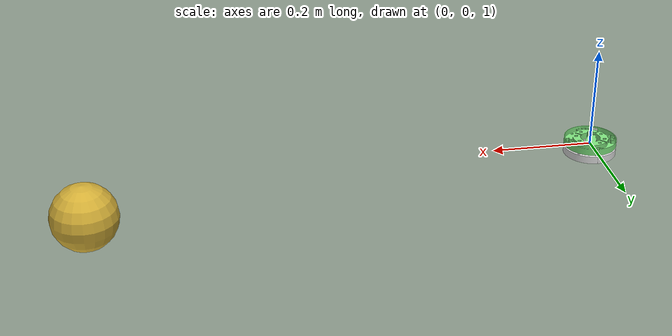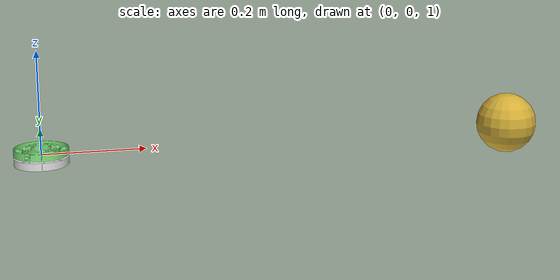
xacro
<?xml version="1.0" ?>
<robot
       xmlns:xacro="http://www.ros.org/wiki/xacro"
       name="adjustable_ft_demo">

  <xacro:include filename="$(find tams_printed_ft)/urdf/ft_payload.xacro" />
  <xacro:include filename="$(find tams_printed_ft)/urdf/adjustable_ft.xacro" />
  <xacro:include filename="$(find tams_printed_ft)/urdf/ft_sensor.xacro" />

  <link name="world" />

  <xacro:ft_control_plugin name="adjustable_ft" />

  <xacro:ft_sensor_plugin
     name="adjustable_ft"
     joint="sensor_joint"
     rate="200"
     topic="wrench" >
  </xacro:ft_sensor_plugin>

  <xacro:adjustable_ft name="adjustable_ft" />

  <joint name="world_adjustable_ft_joint" type="fixed">
    <parent link="world" />
    <child link="adjustable_ft" />
    <origin xyz="0 0 1" rpy="0 0 0" />
  </joint>

  <!-- single payload for testing -->

  <xacro:ft_payload_sphere  name="m130g" mass="0.130" diameter="0.13">
    <cog_origin xyz="0 0 0" rpy="0 0 0"/>
  </xacro:ft_payload_sphere>

  <joint name="adjustable_ft_payload_joint" type="fixed">
    <parent link="adjustable_ft_tool_ring" />
    <child link="m130g" />
    <origin xyz="1 0.1 0" rpy="0 0 0" />
  </joint>

</robot>

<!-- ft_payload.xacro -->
<robot
       xmlns:xacro="http://www.ros.org/wiki/xacro"
       name="ft_paylaod">

<!-- configurable payload for static force/torque tests -->

<xacro:macro name="ft_payload_sphere" params="name mass *cog_origin diameter">
  <link name="${name}">
    <inertial>
      <xacro:insert_block name="cog_origin" />
      <mass value="${mass}" />
      <inertia  ixx="0.001" ixy="0" ixz="0" iyy="0.001" iyz="0" izz="0.001" />
    </inertial>
    <visual>
      <xacro:insert_block name="cog_origin" />
      <material name="ft_payload_gold" > 212,175,55
        <color rgba="${212/255} ${175/255} ${55/255} 1.0" />
      </material>
      <geometry>
         <sphere radius="${diameter/2}" />
      </geometry>
    </visual>
    <collision>
      <xacro:insert_block name="cog_origin" />
      <geometry>
         <sphere radius="${diameter/2}" />
      </geometry>
    </collision>
  </link>

  <gazebo reference="${name}">
      <material>Gazebo/Gold</material>
      <turnGravityOff>false</turnGravityOff>
      <selfCollide>false</selfCollide>
      <!-- kp: stiffness kd: damping mu1, mu2: friction -->
      <mu1>100.0</mu1>
      <mu2>100.0</mu2>
      <kp>1000000.0</kp>
      <kd>1.0</kd>
  </gazebo>
</xacro:macro>

</robot>

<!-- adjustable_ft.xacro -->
<robot
       xmlns:xacro="http://www.ros.org/wiki/xacro"
       name="adjustable_ft">

<xacro:macro name="adjustable_ft" params="name" >

  <link name="${name}">
    <inertial>
      <origin xyz="0 0 ${0.014/2}" />
      <mass value="0.7" />
      <inertia  ixx="0.0001" ixy="0" ixz="0" iyy="0.0001" iyz="0" izz="0.00005" />
      </inertial>
      <visual>
        <origin xyz="0 0 ${-0.018}" />
        <material name="dummy" >
          <color rgba="0.5 0.9 0.5 1.0" />
        </material>
        <geometry>
          <mesh filename="package://tams_printed_ft/meshes/adjustable_ft_upper_ring.dae" scale="0.001 0.001 0.001" />
        </geometry>
      </visual>
      <collision>
        <origin xyz="0 0 ${0.014/2}" />
        <geometry>
          <cylinder radius="${0.104/2}" length="0.014" />
        </geometry>
    </collision>
  </link>

  <gazebo reference="${name}">
      <material>Gazebo/Green</material>
      <turnGravityOff>false</turnGravityOff>
      <selfCollide>false</selfCollide>
      <!-- kp: stiffness kd: damping mu1, mu2: friction -->
      <mu1>100.0</mu1>
      <mu2>100.0</mu2>
      <kp>1000000.0</kp>
      <kd>1.0</kd>
  </gazebo>

  <link name="${name}_tool_ring">
    <inertial>
      <origin xyz="1 0 ${0.018/2}" />
      <mass value="0.15" />
      <inertia  ixx="0.00002" ixy="0" ixz="0" iyy="0.00002" iyz="0" izz="0.00001" />
    </inertial>
    <visual>
        <origin xyz="0 0 0" />
        <material name="silver" >
          <color rgba="0.9 0.9 0.9 1.0" />
        </material>
        <geometry>
          <mesh filename="package://tams_printed_ft/meshes/adjustable_ft_base_ring.dae" scale="0.001 0.001 0.001" />
        </geometry>
      </visual>
      <collision>
        <origin xyz="0 0 ${0.016/2}" />
        <geometry>
          <cylinder radius="${0.104/2}" length="0.016" />
        </geometry>
      </collision>
  </link>

  <gazebo reference="${name}_tool_ring">
      <material>Gazebo/White</material>
      <turnGravityOff>false</turnGravityOff>
      <selfCollide>false</selfCollide>
      <!-- kp: stiffness kd: damping mu1, mu2: friction -->
      <mu1>100.0</mu1>
      <mu2>100.0</mu2>
      <kp>1000000.0</kp>
      <kd>1.0</kd>
  </gazebo>

  <!-- fucking controller requires a namespace followed by SLASH -->
  <!-- type=floating, no axis required -->
  <joint name="${name}_sensor_joint" type="revolute">
    <parent link="adjustable_ft" />
    <child link="adjustable_ft_tool_ring" />
    <origin xyz="0 0 ${-0.018}" rpy="0 0 0" />

    <axis xyz="1 0 0" rpy="0 0 0" />
    <dynamics damping="1.01" friction="0.05" />
    <limit lower="-0.02" upper="0.02" effort="100" velocity="1" />
    <safety_controller soft_lower_limit="-0.001" soft_upper_limit="0.001" k_position="1" k_velocity="1" />
  </joint>

  <transmission name="${name}_sensor_joint_transmission">
    <type>transmission_interface/SimpleTransmission</type>
    <joint name="${name}_sensor_joint">
      <hardwareInterface>hardware_interface/EffortJointInterface</hardwareInterface>
    </joint>
    <actuator name="${name}_sensor_joint_motor">
      <hardwareInterface>hardware_interface/EffortJointInterface</hardwareInterface>
      <mechanicalReduction>1</mechanicalReduction>
    </actuator>
  </transmission>

</xacro:macro>

</robot>
